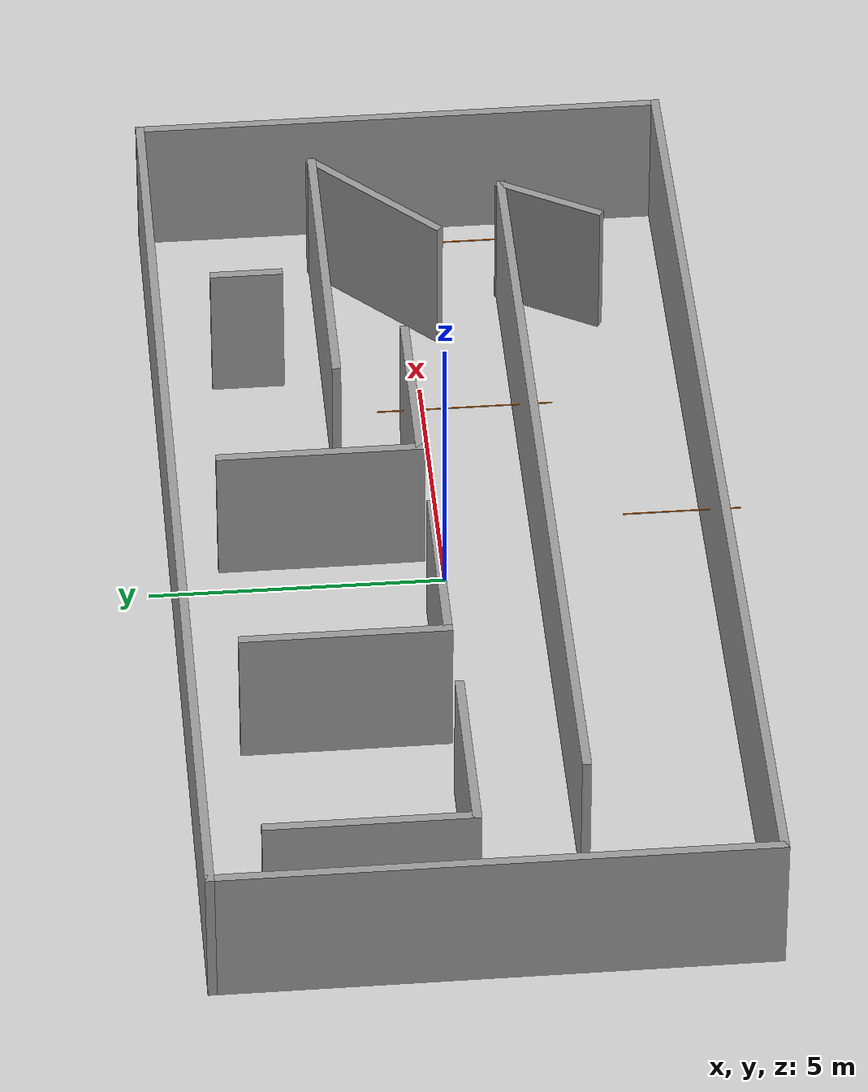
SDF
<sdf version="1.4">
 <world name="default">
  <light name="sun" type="directional">
   <pose>0 0 10 0 -0 0</pose>
   <diffuse>0.8 0.8 0.8 1</diffuse>
   <specular>0.2 0.2 0.2 1</specular>
   <attenuation>
    <range>1000</range>
    <constant>0.9</constant>
    <linear>0.01</linear>
    <quadratic>0.001</quadratic>
   </attenuation>
   <direction>0.5 0.1 -0.9</direction>
  </light>
  <model name="ground_plane">
   <static>1</static>
   <link name="link">
    <collision name="collision">
     <geometry><plane><normal>0 0 1</normal><size>100 100</size></plane></geometry>
     <surface><friction><ode><mu>100</mu><mu2>50</mu2></ode></friction></surface>
    </collision>
    <visual name="visual">
     <cast_shadows>0</cast_shadows>
     <geometry><plane><normal>0 0 1</normal><size>100 100</size></plane></geometry>
     <material>
      <script><uri>file://media/materials/scripts/gazebo.material</uri><name>Gazebo/Grey</name></script>
     </material>
    </visual>
    <velocity_decay><linear>0</linear><angular>0</angular></velocity_decay>
   </link>
  </model>
  <scene><ambient>0.4 0.4 0.4 1</ambient><background>0.7 0.7 0.7 1</background><shadows>0</shadows></scene>
  <physics type="ode">
   <max_step_size>0.01</max_step_size>
   <real_time_factor>1</real_time_factor>
   <real_time_update_rate>0</real_time_update_rate>
   <gravity>0 0 -9.8</gravity>
  </physics>
  <include><uri>model://obstacle_course</uri></include>
 </world>
</sdf>

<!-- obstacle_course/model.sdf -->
<sdf version='1.7'>
  <model name='obstacle_course'>
    <pose>0 0 0 0 -0 0</pose>
    <link name='Wall_0'>
      <collision name='Wall_0_Collision'>
        <geometry>
          <box>
            <size>9.25 0.15 2.5</size>
          </box>
        </geometry>
        <pose>0 0 1.25 0 -0 0</pose>
      </collision>
      <visual name='Wall_0_Visual'>
        <pose>0 0 1.25 0 -0 0</pose>
        <geometry>
          <box>
            <size>9.25 0.15 2.5</size>
          </box>
        </geometry>
        <material>
          <script>
            <uri>file://media/materials/scripts/gazebo.material</uri>
            <name>Gazebo/Grey</name>
          </script>
          <ambient>1 1 1 1</ambient>
        </material>
        <meta>
          <layer>0</layer>
        </meta>
      </visual>
      <pose>-9.55 0 0 0 -0 -1.5708</pose>
    </link>
    <link name='Wall_1'>
      <collision name='Wall_1_Collision'>
        <geometry>
          <box>
            <size>19.25 0.15 2.5</size>
          </box>
        </geometry>
        <pose>0 0 1.25 0 -0 0</pose>
      </collision>
      <visual name='Wall_1_Visual'>
        <pose>0 0 1.25 0 -0 0</pose>
        <geometry>
          <box>
            <size>19.25 0.15 2.5</size>
          </box>
        </geometry>
        <material>
          <script>
            <uri>file://media/materials/scripts/gazebo.material</uri>
            <name>Gazebo/Grey</name>
          </script>
          <ambient>1 1 1 1</ambient>
        </material>
        <meta>
          <layer>0</layer>
        </meta>
      </visual>
      <pose>-0 -4.55 0 0 -0 0</pose>
    </link>
    <link name='Wall_11'>
      <collision name='Wall_11_Collision'>
        <geometry>
          <box>
            <size>3.5 0.15 2.5</size>
          </box>
        </geometry>
        <pose>0 0 1.25 0 -0 0</pose>
      </collision>
      <visual name='Wall_11_Visual'>
        <pose>0 0 1.25 0 -0 0</pose>
        <geometry>
          <box>
            <size>3.5 0.15 2.5</size>
          </box>
        </geometry>
        <material>
          <script>
            <uri>file://media/materials/scripts/gazebo.material</uri>
            <name>Gazebo/Grey</name>
          </script>
          <ambient>1 1 1 1</ambient>
        </material>
        <meta>
          <layer>0</layer>
        </meta>
      </visual>
      <pose>0.584627 2.04448 0 0 -0 -1.5708</pose>
    </link>
    <link name='Wall_12'>
      <collision name='Wall_12_Collision'>
        <geometry>
          <box>
            <size>3.25 0.15 2.5</size>
          </box>
        </geometry>
        <pose>0 0 1.25 0 -0 0</pose>
      </collision>
      <visual name='Wall_12_Visual'>
        <pose>0 0 1.25 0 -0 0</pose>
        <geometry>
          <box>
            <size>3.25 0.15 2.5</size>
          </box>
        </geometry>
        <material>
          <script>
            <uri>file://media/materials/scripts/gazebo.material</uri>
            <name>Gazebo/Grey</name>
          </script>
          <ambient>1 1 1 1</ambient>
        </material>
        <meta>
          <layer>0</layer>
        </meta>
      </visual>
      <pose>2.13463 0.369478 0 0 -0 0</pose>
    </link>
    <link name='Wall_14'>
      <collision name='Wall_14_Collision'>
        <geometry>
          <box>
            <size>15 0.15 2.5</size>
          </box>
        </geometry>
        <pose>0 0 1.25 0 -0 0</pose>
      </collision>
      <visual name='Wall_14_Visual'>
        <pose>0 0 1.25 0 -0 0</pose>
        <geometry>
          <box>
            <size>15 0.15 2.5</size>
          </box>
        </geometry>
        <material>
          <script>
            <uri>file://media/materials/scripts/gazebo.material</uri>
            <name>Gazebo/Grey</name>
          </script>
          <ambient>1 1 1 1</ambient>
        </material>
        <meta>
          <layer>0</layer>
        </meta>
      </visual>
      <pose>0.059227 -1.62769 0 0 -0 0</pose>
    </link>
    <link name='Wall_15'>
      <collision name='Wall_15_Collision'>
        <geometry>
          <box>
            <size>2 0.15 2.5</size>
          </box>
        </geometry>
        <pose>0 0 1.25 0 -0 0</pose>
      </collision>
      <visual name='Wall_15_Visual'>
        <pose>0 0 1.25 0 -0 0</pose>
        <geometry>
          <box>
            <size>2 0.15 2.5</size>
          </box>
        </geometry>
        <material>
          <script>
            <uri>file://media/materials/scripts/gazebo.material</uri>
            <name>Gazebo/Grey</name>
          </script>
          <ambient>1 1 1 1</ambient>
        </material>
        <meta>
          <layer>0</layer>
        </meta>
      </visual>
      <pose>7.02173 -2.42877 0 0 -0 -2.0944</pose>
    </link>
    <link name='Wall_17'>
      <collision name='Wall_17_Collision'>
        <geometry>
          <box>
            <size>5.75 0.15 2.5</size>
          </box>
        </geometry>
        <pose>0 0 1.25 0 -0 0</pose>
      </collision>
      <visual name='Wall_17_Visual'>
        <pose>0 0 1.25 0 -0 0</pose>
        <geometry>
          <box>
            <size>5.75 0.15 2.5</size>
          </box>
        </geometry>
        <material>
          <script>
            <uri>file://media/materials/scripts/gazebo.material</uri>
            <name>Gazebo/Grey</name>
          </script>
          <ambient>1 1 1 1</ambient>
        </material>
        <meta>
          <layer>0</layer>
        </meta>
      </visual>
      <pose>5.60089 1.60875 0 0 -0 0</pose>
    </link>
    <link name='Wall_18'>
      <collision name='Wall_18_Collision'>
        <geometry>
          <box>
            <size>3 0.15 2.5</size>
          </box>
        </geometry>
        <pose>0 0 1.25 0 -0 0</pose>
      </collision>
      <visual name='Wall_18_Visual'>
        <pose>0 0 1.25 0 -0 0</pose>
        <geometry>
          <box>
            <size>3 0.15 2.5</size>
          </box>
        </geometry>
        <material>
          <script>
            <uri>file://media/materials/scripts/gazebo.material</uri>
            <name>Gazebo/Grey</name>
          </script>
          <ambient>1 1 1 1</ambient>
        </material>
        <meta>
          <layer>0</layer>
        </meta>
      </visual>
      <pose>7.39326 0.601125 0 0 -0 -2.35619</pose>
    </link>
    <link name='Wall_2'>
      <collision name='Wall_2_Collision'>
        <geometry>
          <box>
            <size>9.25 0.15 2.5</size>
          </box>
        </geometry>
        <pose>0 0 1.25 0 -0 0</pose>
      </collision>
      <visual name='Wall_2_Visual'>
        <pose>0 0 1.25 0 -0 0</pose>
        <geometry>
          <box>
            <size>9.25 0.15 2.5</size>
          </box>
        </geometry>
        <material>
          <script>
            <uri>file://media/materials/scripts/gazebo.material</uri>
            <name>Gazebo/Grey</name>
          </script>
          <ambient>1 1 1 1</ambient>
        </material>
        <meta>
          <layer>0</layer>
        </meta>
      </visual>
      <pose>9.55 0 0 0 -0 1.5708</pose>
    </link>
    <link name='Wall_20'>
      <collision name='Wall_20_Collision'>
        <geometry>
          <box>
            <size>1.25 0.15 2.5</size>
          </box>
        </geometry>
        <pose>0 0 1.25 0 -0 0</pose>
      </collision>
      <visual name='Wall_20_Visual'>
        <pose>0 0 1.25 0 -0 0</pose>
        <geometry>
          <box>
            <size>1.25 0.15 2.5</size>
          </box>
        </geometry>
        <material>
          <script>
            <uri>file://media/materials/scripts/gazebo.material</uri>
            <name>Gazebo/Grey</name>
          </script>
          <ambient>1 1 1 1</ambient>
        </material>
        <meta>
          <layer>0</layer>
        </meta>
      </visual>
      <pose>5.40412 2.9584 0 0 -0 -1.5708</pose>
    </link>
    <link name='Wall_3'>
      <collision name='Wall_3_Collision'>
        <geometry>
          <box>
            <size>19.25 0.15 2.5</size>
          </box>
        </geometry>
        <pose>0 0 1.25 0 -0 0</pose>
      </collision>
      <visual name='Wall_3_Visual'>
        <pose>0 0 1.25 0 -0 0</pose>
        <geometry>
          <box>
            <size>19.25 0.15 2.5</size>
          </box>
        </geometry>
        <material>
          <script>
            <uri>file://media/materials/scripts/gazebo.material</uri>
            <name>Gazebo/Grey</name>
          </script>
          <ambient>1 1 1 1</ambient>
        </material>
        <meta>
          <layer>0</layer>
        </meta>
      </visual>
      <pose>-0 4.55 0 0 -0 3.14159</pose>
    </link>
    <link name='Wall_5'>
      <collision name='Wall_5_Collision'>
        <geometry>
          <box>
            <size>3.5 0.15 2.5</size>
          </box>
        </geometry>
        <pose>0 0 1.25 0 -0 0</pose>
      </collision>
      <visual name='Wall_5_Visual'>
        <pose>0 0 1.25 0 -0 0</pose>
        <geometry>
          <box>
            <size>3.5 0.15 2.5</size>
          </box>
        </geometry>
        <material>
          <script>
            <uri>file://media/materials/scripts/gazebo.material</uri>
            <name>Gazebo/Grey</name>
          </script>
          <ambient>1 1 1 1</ambient>
        </material>
        <meta>
          <layer>0</layer>
        </meta>
      </visual>
      <pose>-8.45632 1.90376 0 0 -0 -1.5708</pose>
    </link>
    <link name='Wall_6'>
      <collision name='Wall_6_Collision'>
        <geometry>
          <box>
            <size>3.25 0.15 2.5</size>
          </box>
        </geometry>
        <pose>0 0 1.25 0 -0 0</pose>
      </collision>
      <visual name='Wall_6_Visual'>
        <pose>0 0 1.25 0 -0 0</pose>
        <geometry>
          <box>
            <size>3.25 0.15 2.5</size>
          </box>
        </geometry>
        <material>
          <script>
            <uri>file://media/materials/scripts/gazebo.material</uri>
            <name>Gazebo/Grey</name>
          </script>
          <ambient>1 1 1 1</ambient>
        </material>
        <meta>
          <layer>0</layer>
        </meta>
      </visual>
      <pose>-6.90632 0.228763 0 0 -0 0</pose>
    </link>
    <link name='Wall_8'>
      <collision name='Wall_8_Collision'>
        <geometry>
          <box>
            <size>3.5 0.15 2.5</size>
          </box>
        </geometry>
        <pose>0 0 1.25 0 -0 0</pose>
      </collision>
      <visual name='Wall_8_Visual'>
        <pose>0 0 1.25 0 -0 0</pose>
        <geometry>
          <box>
            <size>3.5 0.15 2.5</size>
          </box>
        </geometry>
        <material>
          <script>
            <uri>file://media/materials/scripts/gazebo.material</uri>
            <name>Gazebo/Grey</name>
          </script>
          <ambient>1 1 1 1</ambient>
        </material>
        <meta>
          <layer>0</layer>
        </meta>
      </visual>
      <pose>-3.98861 1.97412 0 0 -0 -1.5708</pose>
    </link>
    <link name='Wall_9'>
      <collision name='Wall_9_Collision'>
        <geometry>
          <box>
            <size>3.25 0.15 2.5</size>
          </box>
        </geometry>
        <pose>0 0 1.25 0 -0 0</pose>
      </collision>
      <visual name='Wall_9_Visual'>
        <pose>0 0 1.25 0 -0 0</pose>
        <geometry>
          <box>
            <size>3.25 0.15 2.5</size>
          </box>
        </geometry>
        <material>
          <script>
            <uri>file://media/materials/scripts/gazebo.material</uri>
            <name>Gazebo/Grey</name>
          </script>
          <ambient>1 1 1 1</ambient>
        </material>
        <meta>
          <layer>0</layer>
        </meta>
      </visual>
      <pose>-2.43861 0.299121 0 0 -0 0</pose>
    </link>
    <link name='Stop_zone_1'>
      <collision name='Stop_zone_1_collision'>
        <geometry>
          <box>
            <size>0.0 0.0 0.0</size>
          </box>
        </geometry>
        <pose>0 0 1.25 0 -0 0</pose>
      </collision>
      <visual name='Stop_zone_1_Visual'>
        <pose>0 0 1.25 0 -0 0</pose>
        <geometry>
          <box>
            <size>0.01 2 0.02</size>
          </box>
        </geometry>
        <material>
          <script>
            <uri>file://media/materials/scripts/gazebo.material</uri>
            <name>Gazebo/Grey</name>
          </script>
          <ambient>0.996078 0.47451 0.0196078 1</ambient>
        </material>
        <meta>
          <layer>0</layer>
        </meta>
      </visual>
      <pose>-0 -4 0 0 -0 0</pose>
    </link>
    <link name='Stop_zone_2'>
      <collision name='Stop_zone_2_collision'>
        <geometry>
          <box>
            <size>0.0 0.0 0.0</size>
          </box>
        </geometry>
        <pose>0 0 1.25 0 -0 0</pose>
      </collision>
      <visual name='Stop_zone_2_Visual'>
        <pose>0 0 1.25 0 -0 0</pose>
        <geometry>
          <box>
            <size>0.01 3 0.02</size>
          </box>
        </geometry>
        <material>
          <script>
            <uri>file://media/materials/scripts/gazebo.material</uri>
            <name>Gazebo/Grey</name>
          </script>
          <ambient>0.996078 0.47451 0.0196078 1</ambient>
        </material>
        <meta>
          <layer>0</layer>
        </meta>
      </visual>
      <pose>3.0 -0.6 0 0 -0 0</pose>
    </link>
    <link name='Stop_zone_3'>
      <collision name='Stop_zone_3_collision'>
        <geometry>
          <box>
            <size>0.0 0.0 0.0</size>
          </box>
        </geometry>
        <pose>0 0 1.25 0 -0 0</pose>
      </collision>
      <visual name='Stop_zone_3_Visual'>
        <pose>0 0 1.25 0 -0 0</pose>
        <geometry>
          <box>
            <size>0.01 2 0.02</size>
          </box>
        </geometry>
        <material>
          <script>
            <uri>file://media/materials/scripts/gazebo.material</uri>
            <name>Gazebo/Grey</name>
          </script>
          <ambient>0.996078 0.47451 0.0196078 1</ambient>
        </material>
        <meta>
          <layer>0</layer>
        </meta>
      </visual>
      <pose>7.5 -0.6 0 0 -0 0</pose>
    </link>
    <static>1</static>
  </model>
</sdf>
